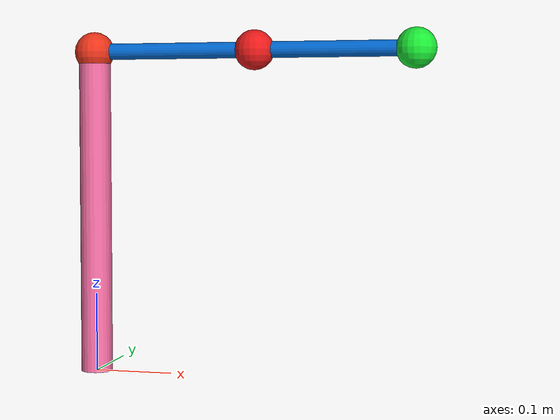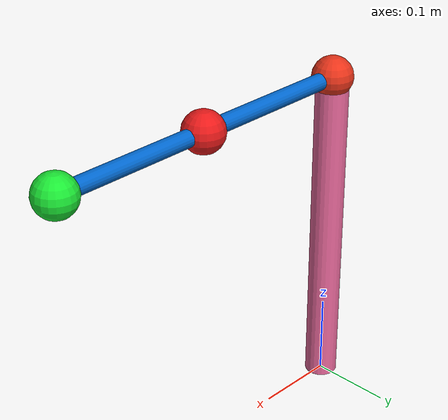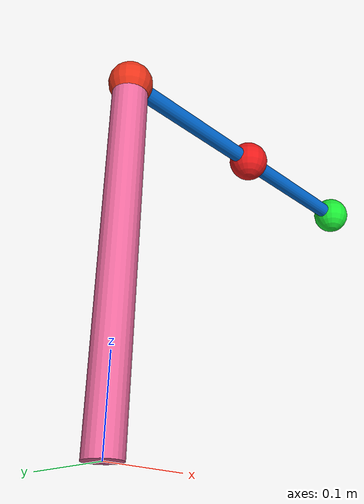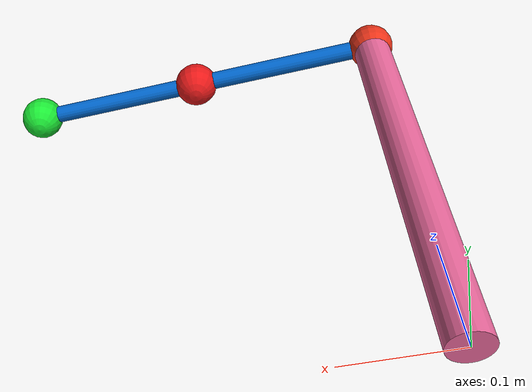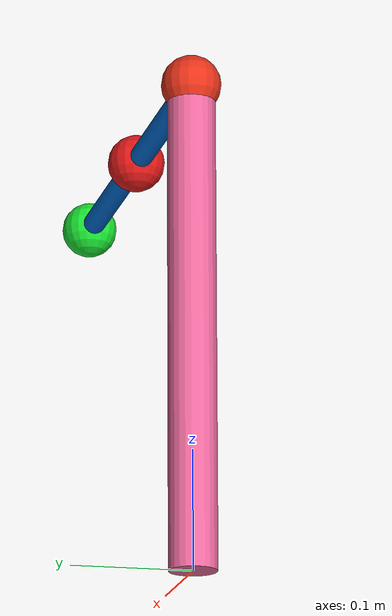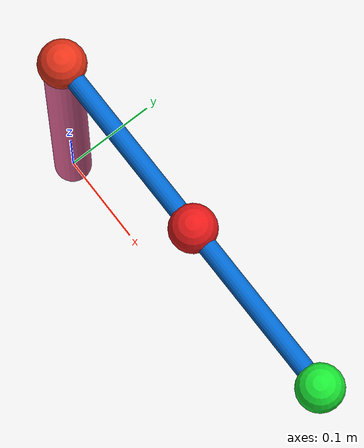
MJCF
<mujoco model="Social3D">
	<compiler angle="radian" inertiafromgeom="true"/>
	<default>
		<joint armature="1" damping="1" limited="false"/>
		<geom contype="0" friction="1 0.1 0.1" rgba="0.7 0.7 0 1"/>
	</default>
	<option integrator="RK4" iterations="50" solver="PGS" timestep="0.003">
	</option>
	<worldbody>
		<!-- Base -->
		<geom conaffinity="0" contype="0" fromto="0 0 0 0 0 0.4" name="base" rgba="0.9 0.4 0.6 1" size=".02" type="cylinder"/>
		<!-- Arm -->
		<body name="robot_arm" pos="0 0 0.41">
			<geom name="robot_shoulder" pos="0 0 0" rgba="0.9 0.2 0.1 0.9" size=".025" type="sphere"/>
			<joint axis="0 0 1" limited="false" name="robot_shoulder_joint_z" pos="0 0 0" type="hinge"/>
			<joint axis="0 1 1" limited="false" name="robot_shoulder_joint_yz" pos="0 0 0" type="hinge"/>
			<geom fromto="0 0 0 0.2 0 0" name="robot_arm0" rgba="0.0 0.4 0.8 0.9" size=".01" type="capsule"/>
			<!-- Lower Arm -->
			<body name="robot_arm1" pos="0.21 0 0">
				<body name="robot_elbow" pos="0 0 0">
					<geom contype="0" conaffinity="0" pos="0 0 0" name="robot_arm1" rgba="0.9 0.1 0.1 0.9" size=".025" type="sphere"/>
				</body>
				<joint axis="0 0 1" limited="false" name="robot_elbow_joint" pos="0 0 0" type="hinge"/>
				<geom contype="0" conaffinity="0" fromto="0 0 0 0.2 0 0" name="robot_arm1" rgba="0.0 0.4 0.8 0.9" size=".01" type="capsule"/>
				<!-- Hand -->
				<body name="robot_hand" pos="0.2 0 0">
					<geom conaffinity="0" contype="0" pos="0 0 0" name="robot_hand" rgba="0.1 0.9 0.2 0.9" size=".025" type="sphere"/>
				</body>
			</body>
		</body>
	</worldbody>
	<actuator>
		<motor gear="100.0" joint="robot_shoulder_joint_z"/>
		<motor gear="100.0" joint="robot_shoulder_joint_yz"/>
		<motor gear="100.0" joint="robot_elbow_joint"/>
	</actuator>
</mujoco>
